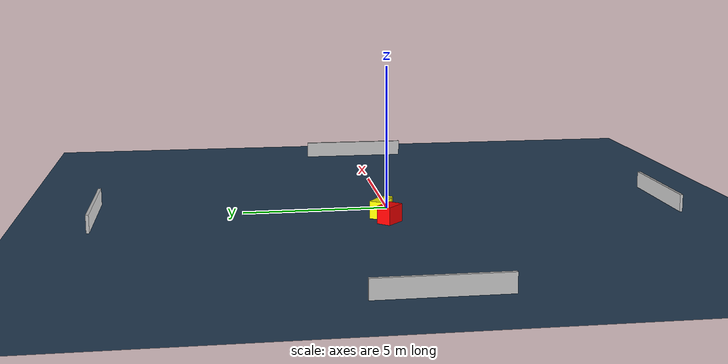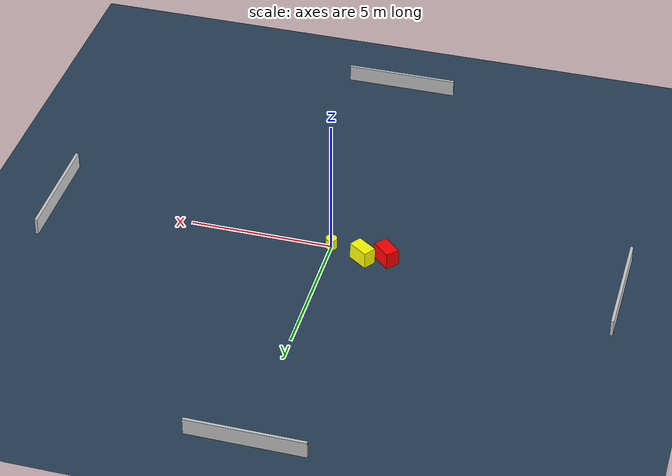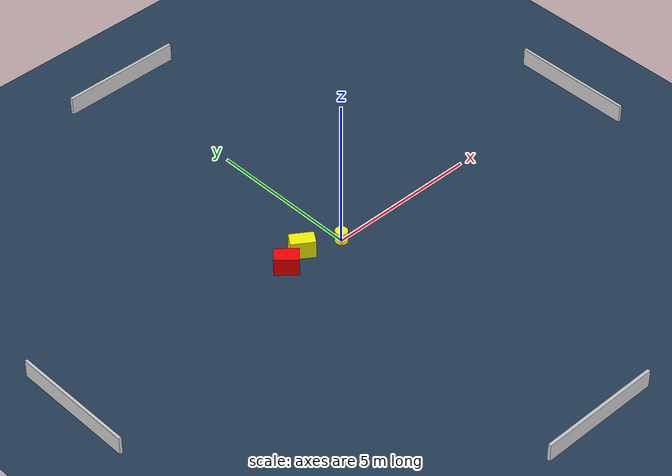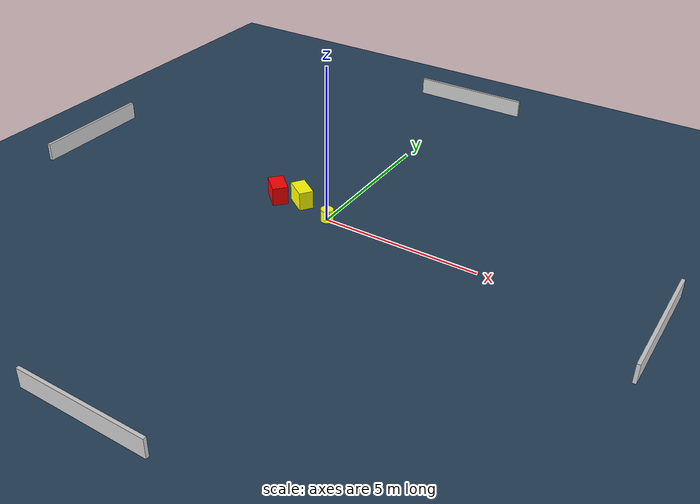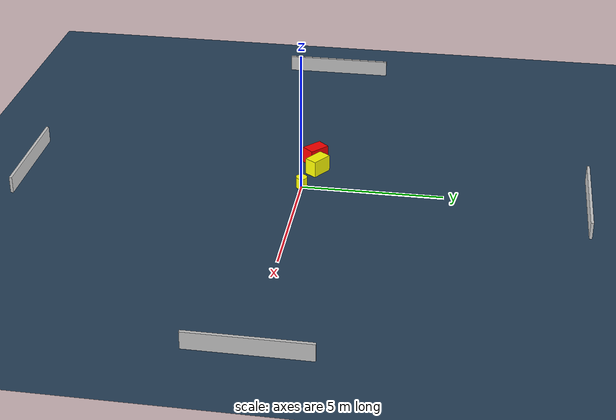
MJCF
<?xml version="1.0" ?>
<mujoco model="generated_environment">
  <option timestep="0.01" integrator="RK4" cone="elliptic"/>
  <default>
    <geom density="1"/>
  </default>
  <asset>
    <texture builtin="gradient" height="3072" name="skybox" rgb1="0.3 0.5 0.7" rgb2="0 0 0" type="skybox" width="512"/>
    <texture builtin="checker" height="300" name="groundplane" rgb1="0.2 0.3 0.4" rgb2="0.1 0.2 0.3" type="2d" width="300"/>
    <material name="groundplane" reflectance="0.2" texrepeat="5 5" texture="groundplane"/>
  </asset>
  <worldbody>
    <light dir="0 0 -1" directional="true" pos="0 0 1.5"/>
    <geom condim="3" friction="0.5 0.005 0.001" material="groundplane" name="floor" pos="0 0 0" size="0 0 0.05" type="plane"/>
    <body name="walls">
      <geom name="wall_1" condim="4" pos="-10.0 0.0 0.3" rgba="0.800000011920929 0.800000011920929 0.800000011920929 1.0" size="0.05 2.0 0.3" type="box"/>
      <geom name="wall_2" condim="4" pos="10.0 0.0 0.3" rgba="0.800000011920929 0.800000011920929 0.800000011920929 1.0" size="0.05 2.0 0.3" type="box"/>
      <geom name="wall_3" condim="4" pos="0.0 -10.0 0.3" rgba="0.800000011920929 0.800000011920929 0.800000011920929 1.0" size="2.0 0.05 0.3" type="box"/>
      <geom name="wall_4" condim="4" pos="0.0 10.0 0.3" rgba="0.800000011920929 0.800000011920929 0.800000011920929 1.0" size="2.0 0.05 0.3" type="box"/>
    </body>
    <body name="robot">
      <joint name="joint_x" type="slide" pos="0 0 0" axis="1 0 0"/>
      <joint name="joint_y" type="slide" pos="0 0 0" axis="0 1 0"/>
      <geom name="robot" type="cylinder" pos="0.0 0.0 0.2" size="0.2 0.2 0.0" mass="5.0" friction="1.0 0.005 0.0001" condim="4" rgba="1.0 1.0 0.0 1.0"/>
    </body>
    <body name="obstacle_1_movable">
      <geom name="obstacle_1_movable" condim="4" pos="-1.1962622510996341 0.39531397282818587 0.3" euler="0 0 55.40377991226777" friction="0.0 0.005 0.001" rgba="1.0 1.0 0.0 1.0" size="0.23018859945745515 0.3836414046068023 0.3" type="box" mass="0.1"/>
      <joint type="free"/>
    </body>
    <body name="obstacle_2_static">
      <geom name="obstacle_2_static" condim="4" pos="-1.9887403737737355 0.20838805596507823 0.3" euler="0 0 47.52450083693875" friction="0.0 0.005 0.001" rgba="1.0 0.0 0.0 1.0" size="0.2466730794246455 0.3804951933439715 0.3" type="box"/>
    </body>
  </worldbody>
  <actuator>
    <motor name="actuator_x" joint="joint_x" gear="1" ctrlrange="-1 1"/>
    <motor name="actuator_y" joint="joint_y" gear="1" ctrlrange="-1 1"/>
  </actuator>
</mujoco>
